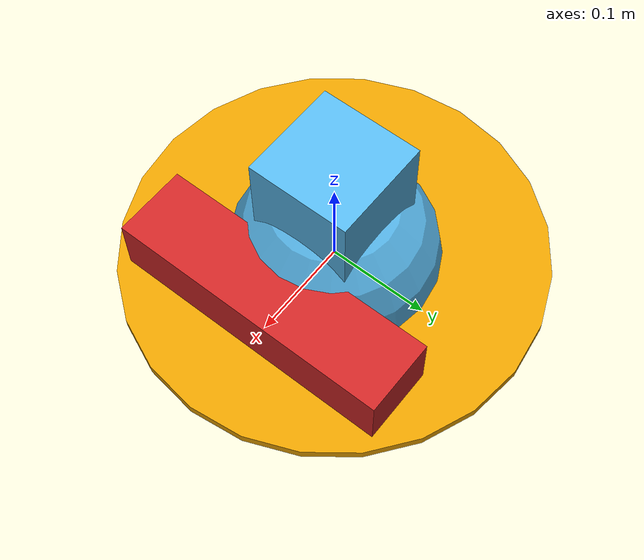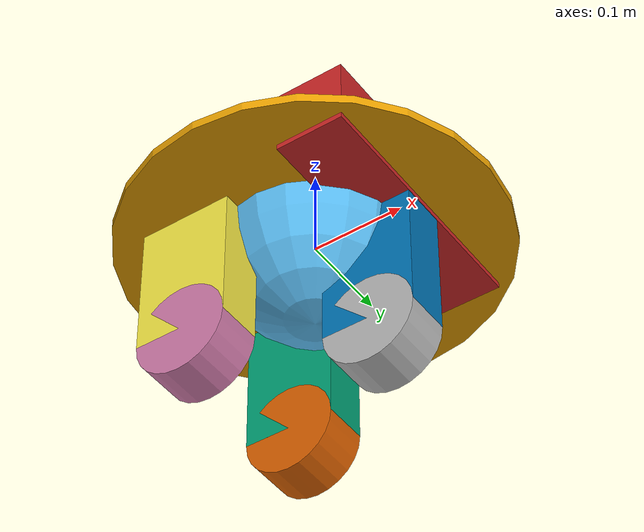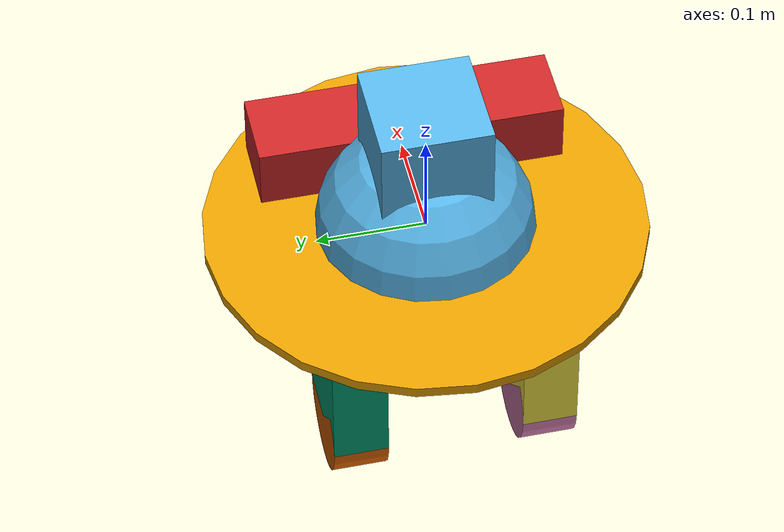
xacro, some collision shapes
<?xml version='1.0'?>

<robot name="slam_project" xmlns:xacro="http://www.ros.org/wiki/xacro">
<xacro:include filename="$(find slam_project)/urdf/slam_project.gazebo" />
  <link name="robot_footprint"></link>

  <joint name="robot_footprint_joint" type="fixed">
    <origin xyz="0.0 0 0" rpy="0 0 0" />
    <parent link="robot_footprint"/>
    <child link="chassis" />
  </joint>

  <link name='chassis'>
<pose> 0 0 .2 0 0 0 </pose>
    <inertial>
      <mass value="1.0"/>
      <origin xyz="0.0 0 0" rpy=" 0 0 0"/>
      <inertia
          ixx="0.004" ixy="0" ixz="0"
          iyy="0.004" iyz="0"
          izz="0.004"
      />
    </inertial>

    <collision name='chassis_collision'>
      <origin xyz="0.0 0 0" rpy=" 0 0 0"/>
      <geometry>
        <sphere radius=".1"/>
      </geometry>
    </collision>

    <visual name='chassis_visual'>
      <origin xyz="0.0 0 0" rpy=" 0 0 0"/>
      <geometry>
        <sphere radius=".1"/>
      </geometry>
    </visual>
</link>

<link name='back_left_caster'>
<inertial>
<mass value=".05"/>
<inertia ixx=".0001" iyy=".00014" izz=".00005"
         ixy="0" ixz="0" iyz="0" />
</inertial>

<collision name='back_left_caster_collision'>
      <origin xyz="0 0 0" rpy=" 0 0 0"/>
      <geometry>
        <box size=".1 .05 .15"/>
      </geometry>
      <surface>
      <friction>
      <ode>
      <mu>0</mu>
     <mu2>0</mu2>
     <slip1>1.0</slip1>
     <slip2>1.0</slip2>
     </ode>
    </friction>
    </surface>
    </collision>

    <visual name='back_left_caster_visual'>
      <origin xyz="0 0 0" rpy=" 0 0 0"/>
      <geometry>
        <box size="0.1 .05 .15"/>
      </geometry>
    </visual>
</link>

<joint type="fixed" name="back_left_caster_joint">
<origin xyz="-.075 .087 -.075" rpy="0 0 0"/>
<parent link="chassis"/>
<child link="back_left_caster"/>
</joint>

<link name="back_right_caster">
<inertial>
<mass value=".05"/>
<inertia ixx=".0001" iyy=".00014" izz=".00005"
         ixy="0" ixz="0" iyz="0" />
</inertial>

<collision name='back_right_caster_collision'>
      <origin xyz="0 0 0" rpy=" 0 0 0"/>
      <geometry>
        <box size=".1 .05 .15"/>
      </geometry>
      <surface>
      <friction>
      <ode>
      <mu>0</mu>
      <mu2>0</mu2>
      <slip1>1.0</slip1>
      <slip2>1.0</slip2>
      </ode>
      </friction>
     </surface>
    </collision>

    <visual name='back_right_caster_visual'>
      <origin xyz="0 0 0" rpy=" 0 0 0"/>
      <geometry>
        <box size="0.1 .05 .15"/>
      </geometry>
    </visual>
</link>

<joint type="fixed" name="back_right_caster_joint">
<origin xyz="-.075 -.087 -.075" rpy="0 0 0"/>
<parent link="chassis"/>
<child link="back_right_caster"/>
</joint>

<link name="front_caster">
<inertial>
<mass value=".05"/>
<inertia ixx=".0001" iyy=".00014" izz=".00005"
         ixy="0" ixz="0" iyz="0" />
</inertial>

    <collision name='front_caster_collision'>
      <origin xyz="0 0 0" rpy=" 0 0 0"/>
      <geometry>
        <box size="0.1 .05 .15"/>
      </geometry>
      <surface>
        <friction>
          <ode>
            <mu>0</mu>
            <mu2>0</mu2>
            <slip1>1.0</slip1>
            <slip2>1.0</slip2>
          </ode>
        </friction>
      </surface>
    </collision>

    <visual name='front_caster_visual'>
      <origin xyz="0 0 0" rpy=" 0 0 0"/>
      <geometry>
        <box size="0.1 .05 .15"/>
      </geometry>
    </visual>

</link>

<joint type="continuous" name="front_caster_joint">
<origin xyz=".075 0 -.075" rpy="0 0 0"/>
<parent link="chassis"/>
<child link="front_caster"/>
<axis xyz="0 0 1"/>
</joint>

<link name="back_left_wheel">
<inertial>
<mass value="2.0"/>
<origin xyz="0 0 0" rpy="0 1.5707 1.5707"/>
<inertia ixx="0.0017" ixy="0" ixz="0"
         iyy="0.0017" iyz="0" izz=".0004"/>
</inertial>

<collision name="back_left_wheel_collision">
<origin xyz="0 0 0" rpy="0 1.5707 1.5707"/>
<geometry>
<cylinder radius="0.05" length="0.05"/>
</geometry>
</collision>

<visual name="back_left_wheel_visual">
<origin xyz="0 0 0" rpy="0 1.5707 1.5707"/>
<geometry>
<cylinder radius="0.05" length="0.05"/>
</geometry>
</visual>
</link>

<joint type="continuous" name="left_wheel_hinge">
<origin xyz="0 0 -.075" rpy="0 0 0"/>
<child link="back_left_wheel"/>
<parent link="back_left_caster"/>
<axis xyz="0 1 0" rpy="0 0 0"/>
</joint>

<link name="back_right_wheel">
<inertial>
<mass value="2.0"/>
<origin xyz="0 0 0" rpy="0 1.5707 1.5707"/>
<inertia ixx="0.0017" ixy="0" ixz="0"
         iyy="0.0017" iyz="0" izz=".0004"/>
</inertial>

<collision name="back_right_wheel_collision">
<origin xyz="0 0 0" rpy="0 1.5707 1.5707"/>
<geometry>
<cylinder radius="0.05" length="0.05"/>
</geometry>
</collision>

<visual name="back_right_wheel_visual">
<origin xyz="0 0 0" rpy="0 1.5707 1.5707"/>
<geometry>
<cylinder radius="0.05" length="0.05"/>
</geometry>
</visual>
</link>

<joint type="continuous" name="right_wheel_hinge">
<origin xyz="0 0 -.075" rpy="0 0 0"/>
<child link="back_right_wheel"/>
<parent link="back_right_caster"/>
<axis xyz="0 1 0" rpy="0 0 0"/>
</joint>

<link name="front_wheel">
<inertial>
<mass value="2.0"/>
<origin xyz="0 0 0" rpy="0 1.5707 1.5707"/>
<inertia ixx="0.0017" ixy="0" ixz="0"
         iyy="0.0017" iyz="0" izz="0.0004"/>
</inertial>

<collision name="front_wheel_collision">
<origin xyz="0 0 0" rpy="0 1.5707 1.5707"/>
<geometry>
<cylinder radius="0.05" length="0.05"/>
</geometry>
</collision>

<visual name="front_wheel_visual">
<origin xyz="0 0 0" rpy="0 1.5707 1.5707"/>
<geometry>
<cylinder radius="0.05" length="0.05"/>
</geometry>
</visual>
</link>

<joint type="continuous" name="front_wheel_hinge">
<origin xyz="0 0 -.075" rpy="0 0 0"/>
<child link="front_wheel"/>
<parent link="front_caster"/>
<axis xyz="0 0 1" rpy="0 0 0"/>
<limit effort="10000" velocity="1000"/>
<joint_properties damping="1.0" friction="1.0"/>
</joint>

<link name="belt">
<inertial>
<mass value="0.5"/>
<origin xyz="0 0 0" rpy="0 0 0"/>
<inertia ixx=".005" ixz="0" iyy=".005"
         ixy="0" iyz="0" izz=".0017"/>
</inertial>

<collision name="belt_collision">
<origin xyz="0 0 0" rpy="0 0 0"/>
<geometry>
<cylinder radius =".2" length=".01"/>
</geometry>
</collision>

<visual name="belt_visual">
<origin xyz="0 0 0" rpy="0 0 0"/>
<geometry>
<cylinder radius="0.2" length=".01"/>
</geometry>
</visual>
</link>

<joint type="continuous" name="belt_joint">
<origin xyz="0 0 0" rpy="0 0 0"/>
<child link="belt"/>
<parent link="chassis"/>
<axis xyz="0 0 1"/>
</joint>

<link name="hokuyo">
<inertial>
<mass value="0.1"/>
<origin xyz="0 0 0" rpy="0 0 0"/>
<inertia ixx="1e-6" ixy="0" ixz="0"
         iyy="1e-6" iyz="0" izz="1e-6"/>
</inertial>
<collision name="hokuyo_collision">
<origin xyz="0 0 0" rpy="0 0 0"/>
<geometry>
<box size="0.1 0.1 0.1"/>
</geometry>
</collision>
<visual name="hokuyo_visual">
<origin xyz="0 0 0" rpy="0 0 0"/>
<geometry>
<mesh filename="package://slam_project/meshes/hokuyo.dae"/>
</geometry>
</visual>
</link>

<joint type="fixed" name="hokuyo_joint">
<origin xyz="0 0 0.1" rpy="0 0 0"/>
<child link="hokuyo"/>
<parent link="chassis"/>
</joint>

 <link name='camera_link'>

    <inertial>
      <mass value="0.564"/>
      <origin xyz="0 0 0" rpy=" 0 0 0"/>
      <inertia
          ixx="0.003881243" ixy="0" ixz="0"
          iyy="0.000498940" iyz="0"
          izz="0.003879257"
      />
    </inertial>

    <collision name='camera_collision'>
      <origin xyz="0 0 0" rpy=" 0 0 0"/>
      <geometry>
        <box size="0.07271 0.27794 0.073"/>
      </geometry>
    </collision>

    <visual name='camera_visual'>
      <origin xyz="0 0 0" rpy="0 0 1.571"/>
      <geometry>
        <mesh filename="package://slam_project/meshes/kinect.dae"/>
      </geometry>
     <material name="red"/>
    </visual>
</link>

<link name="camera_rgb_frame"/>
<link name="camera_rgb_optical_frame"/>
<link name="camera_depth_frame"/>
<link name="camera_depth_optical_frame"/>

<joint type="fixed" name="camera_rgb_joint">
    <origin xyz="0.12 0  0.0415" rpy="0 0 0"/>
    <child link="camera_rgb_frame"/>
    <parent link="chassis"/>
  </joint>

<joint name="camera_rgb_optical_joint" type="fixed">
<origin xyz="0 0 0" rpy="-1.571 0 -1.571"/>
<parent link="camera_rgb_frame"/>
<child link="camera_rgb_optical_frame"/>
</joint>

    <joint name="camera_joint" type="fixed">
      <origin xyz="-0.031 0 -0.016" rpy="0 0 0"/>
      <parent link="camera_rgb_frame"/>
      <child link="camera_link"/>
    </joint>

<joint name="camera_depth_joint" type="fixed">
<origin xyz="0 0 0" rpy="0 0 0"/>
<parent link="camera_rgb_frame"/>
<child link="camera_depth_frame"/>
</joint>

<joint name="camera_depth_optical_joint" type="fixed">
<origin xyz="0 0 0" rpy="-1.571 0 -1.571"/>
<parent link="camera_depth_frame"/>
<child link="camera_depth_optical_frame"/>
</joint>

</robot>
